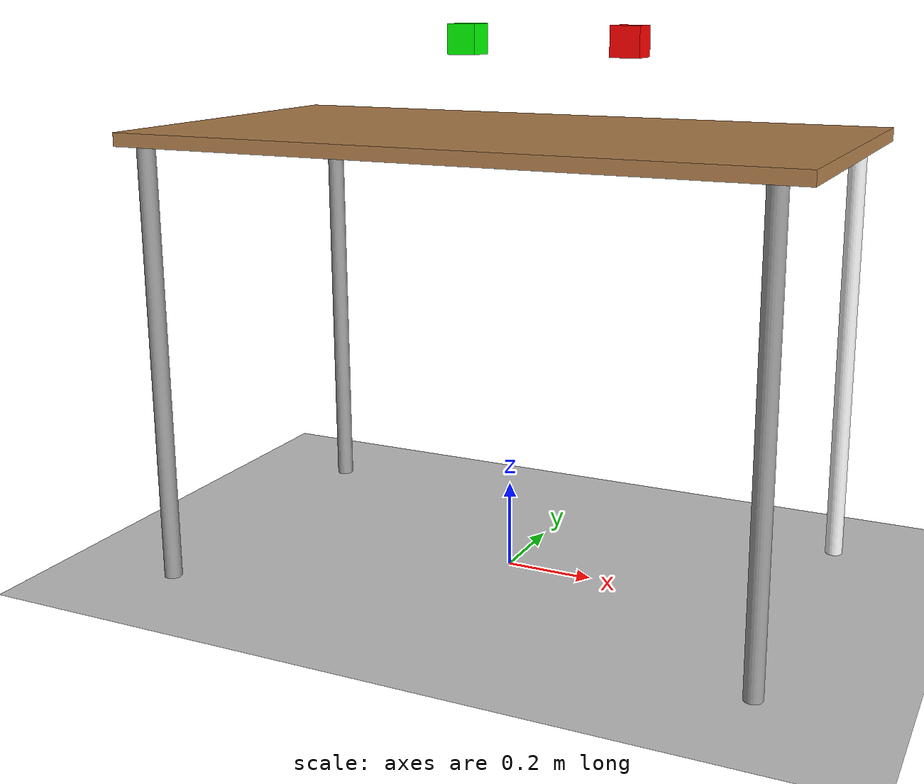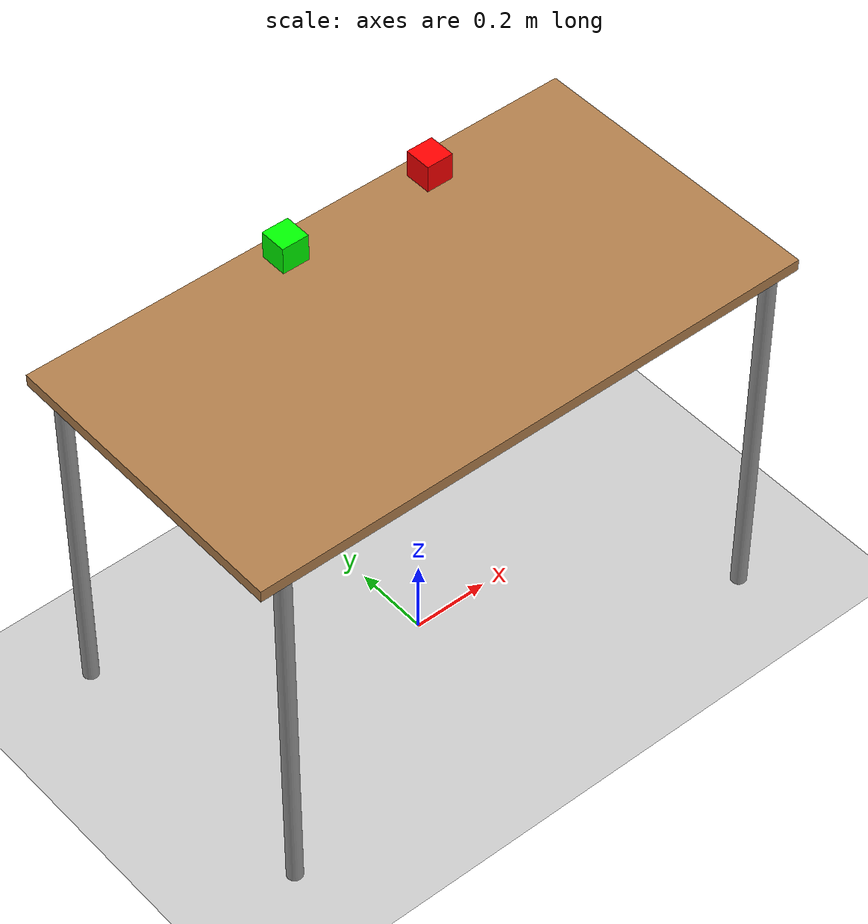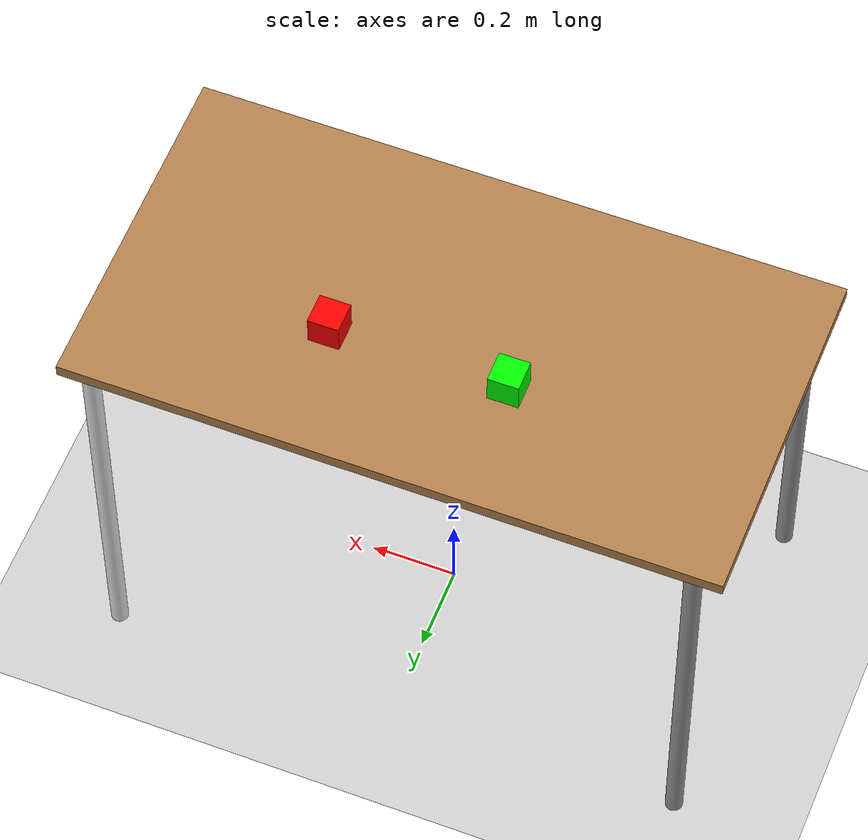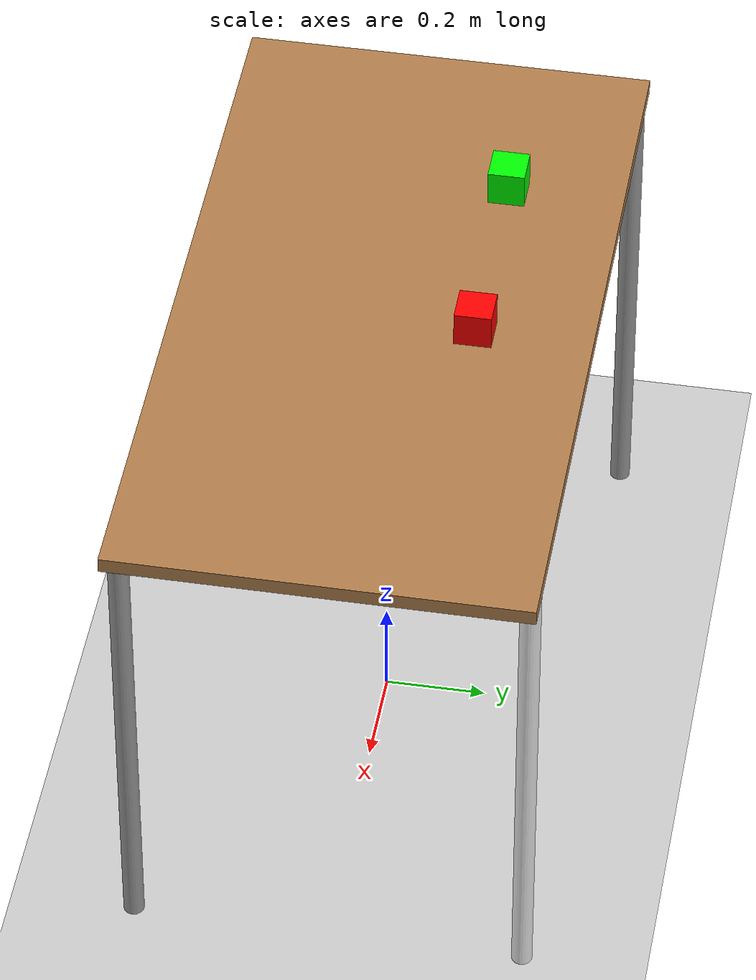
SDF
<sdf version="1.9">
 <world name="simulation_world">
  <physics name="1ms" type="ignored">
   <max_step_size>0.001</max_step_size>
   <real_time_factor>1</real_time_factor>
   <real_time_update_rate>1000</real_time_update_rate>
  </physics>
  <plugin name="ignition::gazebo::systems::Physics" filename="ignition-gazebo-physics-system"/>
  <plugin name="ignition::gazebo::systems::Sensors" filename="ignition-gazebo-sensors-system">
   <render_engine>ogre</render_engine>
  </plugin>
  <plugin name="ignition::gazebo::systems::UserCommands" filename="ignition-gazebo-user-commands-system"/>
  <plugin name="ignition::gazebo::systems::SceneBroadcaster" filename="ignition-gazebo-scene-broadcaster-system"/>
  <scene>
   <ambient>1 1 1 1</ambient>
   <background>0.8 0.8 0.8 1</background>
   <grid>true</grid>
   <shadows>true</shadows>
  </scene>
  <gravity>0 0 -9.8</gravity>
  <magnetic_field>6e-06 2.3e-05 -4.2e-05</magnetic_field>
  <atmosphere type="adiabatic"/>
  <model name="ground_plane">
   <static>true</static>
   <link name="link">
    <collision name="collision">
     <geometry><plane><normal>0 0 1</normal><size>100 100</size></plane></geometry>
    </collision>
    <visual name="visual">
     <geometry><plane><normal>0 0 1</normal><size>100 100</size></plane></geometry>
     <material>
      <ambient>0.8 0.8 0.8 1</ambient>
      <diffuse>0.8 0.8 0.8 1</diffuse>
      <specular>0.8 0.8 0.8 1</specular>
     </material>
    </visual>
    <inertial>
     <mass>1</mass>
     <inertia><ixx>1</ixx><ixy>0</ixy><ixz>0</ixz><iyy>1</iyy><iyz>0</iyz><izz>1</izz></inertia>
    </inertial>
   </link>
  </model>
  <model name="red_cube">
   <pose>0.2 0.2 1.2 0 -0 0</pose>
   <link name="box_link">
    <inertial>
     <inertia><ixx>1</ixx><ixy>0</ixy><ixz>0</ixz><iyy>1</iyy><iyz>0</iyz><izz>1</izz></inertia>
     <mass>0.5</mass>
    </inertial>
    <collision name="box_collision"><geometry><box><size>0.07 0.07 0.07</size></box></geometry></collision>
    <visual name="box_visual">
     <geometry><box><size>0.07 0.07 0.07</size></box></geometry>
     <material><ambient>1 0 0 1</ambient><diffuse>1 0 0 1</diffuse><specular>1 0 0 1</specular></material>
    </visual>
   </link>
   <static>false</static>
  </model>
  <model name="green_cube">
   <pose>-0.2 0.2 1.2 0 -0 0</pose>
   <link name="box_link">
    <inertial>
     <inertia><ixx>1</ixx><ixy>0</ixy><ixz>0</ixz><iyy>1</iyy><iyz>0</iyz><izz>1</izz></inertia>
     <mass>0.5</mass>
    </inertial>
    <collision name="box_collision"><geometry><box><size>0.07 0.07 0.07</size></box></geometry></collision>
    <visual name="box_visual">
     <geometry><box><size>0.07 0.07 0.07</size></box></geometry>
     <material><ambient>0 1 0 1</ambient><diffuse>0 1 0 1</diffuse><specular>0 1 0 1</specular></material>
    </visual>
   </link>
   <static>false</static>
  </model>
  <include><uri>model://table</uri><name>table</name></include>
  <light name="sun" type="directional">
   <pose>0 0 10 0 -0 0</pose>
   <intensity>1</intensity>
   <direction>-0.5 0.1 -0.9</direction>
   <diffuse>0.8 0.8 0.8 1</diffuse>
   <specular>0.8 0.8 0.8 1</specular>
   <attenuation>
    <range>1000</range>
    <linear>0.01</linear>
    <constant>0.90000000000000002</constant>
    <quadratic>0.001</quadratic>
   </attenuation>
   <spot><inner_angle>0</inner_angle><outer_angle>0</outer_angle><falloff>0</falloff></spot>
  </light>
 </world>
</sdf>

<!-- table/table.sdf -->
<sdf version="1.5">
  <model name="table">
    <static>true</static>
    <link name="link">
      <collision name="surface">
        <pose>0 0 1.0 0 0 0</pose>
        <geometry>
          <box>
            <size>1.5 0.8 0.03</size>
          </box>
        </geometry>
        <surface>
          <friction>
            <ode>
              <mu>0.6</mu>
              <mu2>0.6</mu2>
            </ode>
          </friction>
        </surface>
      </collision>
      <visual name="visual1">
        <pose>0 0 1.0 0 0 0</pose>
        <geometry>
          <box>
            <size>1.5 0.8 0.03</size>
          </box>
        </geometry>
        <material>
          <script>
            <uri>file://media/materials/scripts/gazebo.material</uri>
            <name>Gazebo/Wood</name>
          </script>
        </material>
      </visual>
      <collision name="front_left_leg">
        <pose>0.68 0.38 0.5 0 0 0</pose>
        <geometry>
          <cylinder>
            <radius>0.02</radius>
            <length>1.0</length>
          </cylinder>
        </geometry>
      </collision>
      <visual name="front_left_leg">
        <pose>0.68 0.38 0.5 0 0 0</pose>
        <geometry>
          <cylinder>
            <radius>0.02</radius>
            <length>1.0</length>
          </cylinder>
        </geometry>
        <material>
          <script>
            <uri>file://media/materials/scripts/gazebo.material</uri>
            <name>Gazebo/White</name>
          </script>
        </material>
      </visual>
      <collision name="front_right_leg">
        <pose>0.68 -0.38 0.5 0 0 0</pose>
        <geometry>
          <cylinder>
            <radius>0.02</radius>
            <length>1.0</length>
          </cylinder>
        </geometry>
      </collision>
      <visual name="front_right_leg">
        <pose>0.68 -0.38 0.5 0 0 0</pose>
        <geometry>
          <cylinder>
            <radius>0.02</radius>
            <length>1.0</length>
          </cylinder>
        </geometry>
        <material>
          <script>
            <uri>file://media/materials/scripts/gazebo.material</uri>
            <name>Gazebo/Grey</name>
          </script>
        </material>
      </visual>
      <collision name="back_right_leg">
        <pose>-0.68 -0.38 0.5 0 0 0</pose>
        <geometry>
          <cylinder>
            <radius>0.02</radius>
            <length>1.0</length>
          </cylinder>
        </geometry>
      </collision>
      <visual name="back_right_leg">
        <pose>-0.68 -0.38 0.5 0 0 0</pose>
        <geometry>
          <cylinder>
            <radius>0.02</radius>
            <length>1.0</length>
          </cylinder>
        </geometry>
        <material>
          <script>
            <uri>file://media/materials/scripts/gazebo.material</uri>
            <name>Gazebo/Grey</name>
          </script>
        </material>
      </visual>
      <collision name="back_left_leg">
        <pose>-0.68 0.38 0.5 0 0 0</pose>
        <geometry>
          <cylinder>
            <radius>0.02</radius>
            <length>1.0</length>
          </cylinder>
        </geometry>
      </collision>
      <visual name="back_left_leg">
        <pose>-0.68 0.38 0.5 0 0 0</pose>
        <geometry>
          <cylinder>
            <radius>0.02</radius>
            <length>1.0</length>
          </cylinder>
        </geometry>
        <material>
          <script>
            <uri>file://media/materials/scripts/gazebo.material</uri>
            <name>Gazebo/Grey</name>
          </script>
        </material>
      </visual>
    </link>
  </model>
</sdf>
